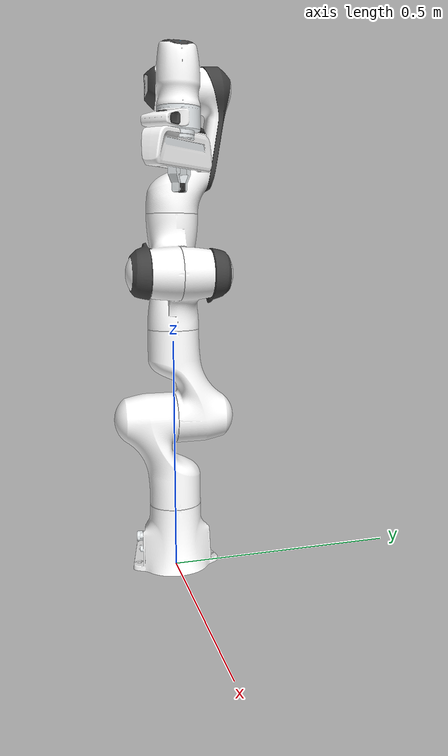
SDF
<sdf version='1.9'>
  <model name='panda'>
    <joint name='panda_joint_base' type='fixed'>
      <pose relative_to='__model__'>0 0 0 0 0 0</pose>
      <parent>world</parent>
      <child>panda_link0</child>
    </joint>
    <link name='panda_link0'>
      <pose relative_to='panda_joint_base'>0 0 0 0 0 0</pose>
      <inertial>
        <pose>-0.025566 -2.87883e-05 0.057332 0 0 0</pose>
        <mass>2.8142713001040618</mass>
        <inertia>
          <ixx>0.0075390636364814686</ixx>
          <ixy>-1.505312457478333e-05</ixy>
          <ixz>-0.0012144328835738971</ixz>
          <iyy>0.01050801742738296</iyy>
          <iyz>1.043480350103298e-05</iyz>
          <izz>0.0098649336387082748</izz>
        </inertia>
      </inertial>
      <collision name='panda_link0_collision'>
        <pose>0 0 0 0 0 0</pose>
        <geometry>
          <mesh>
            <scale>1 1 1</scale>
            <uri>meshes/collision/link0.stl</uri>
          </mesh>
        </geometry>
        <surface>
          <contact>
            <ode/>
          </contact>
          <friction>
            <ode>
              <mu>0.84999999999999998</mu>
              <mu2>0.84999999999999998</mu2>
            </ode>
          </friction>
        </surface>
      </collision>
      <visual name='panda_link0_visual'>
        <pose>0 0 0 0 0 0</pose>
        <geometry>
          <mesh>
            <scale>1 1 1</scale>
            <uri>meshes/visual/link0.dae</uri>
          </mesh>
        </geometry>
      </visual>
    </link>
    <joint name='panda_joint1' type='revolute'>
      <pose relative_to='panda_link0'>0 0 0.333 0 0 0</pose>
      <parent>panda_link0</parent>
      <child>panda_link1</child>
      <axis>
        <xyz>0 0 1</xyz>
        <limit>
          <lower>-2.8972465583105871</lower>
          <upper>2.8972465583105871</upper>
          <effort>87</effort>
          <velocity>2.617993877991494</velocity>
        </limit>
        <dynamics>
          <damping>21.75</damping>
          <friction>3.48</friction>
          <spring_reference>0</spring_reference>
          <spring_stiffness>0</spring_stiffness>
        </dynamics>
      </axis>
      <physics>
        <ode>
          <limit>
            <cfm>0</cfm>
            <erp>0.20000000000000001</erp>
          </limit>
        </ode>
      </physics>
    </joint>
    <link name='panda_link1'>
      <pose relative_to='panda_joint1'>0 0 0 0 0 0</pose>
      <inertial>
        <pose>-3.72212e-09 -0.0324958 -0.0675818 0 0 0</pose>
        <mass>2.6433170427227211</mass>
        <inertia>
          <ixx>0.017405076982879721</ixx>
          <ixy>-8.6879863696210777e-09</ixy>
          <ixz>-1.627781906292042e-08</ixz>
          <iyy>0.01535207793578173</iyy>
          <iyz>0.0045108559591022449</iyz>
          <izz>0.0059878916630738566</izz>
        </inertia>
      </inertial>
      <collision name='panda_link1_collision'>
        <pose>0 0 0 0 0 0</pose>
        <geometry>
          <mesh>
            <scale>1 1 1</scale>
            <uri>meshes/collision/link1.stl</uri>
          </mesh>
        </geometry>
        <surface>
          <contact>
            <ode/>
          </contact>
          <friction>
            <ode>
              <mu>0.84999999999999998</mu>
              <mu2>0.84999999999999998</mu2>
            </ode>
          </friction>
        </surface>
      </collision>
      <visual name='panda_link1_visual'>
        <pose>0 0 0 0 0 0</pose>
        <geometry>
          <mesh>
            <scale>1 1 1</scale>
            <uri>meshes/visual/link1.dae</uri>
          </mesh>
        </geometry>
      </visual>
    </link>
    <joint name='panda_joint2' type='revolute'>
      <pose relative_to='panda_link1'>0 0 0 -1.570796326794896 0 0</pose>
      <parent>panda_link1</parent>
      <child>panda_link2</child>
      <axis>
        <xyz>0 0 1</xyz>
        <limit>
          <lower>-1.7627825445142731</lower>
          <upper>1.7627825445142731</upper>
          <effort>87</effort>
          <velocity>2.617993877991494</velocity>
        </limit>
        <dynamics>
          <damping>21.75</damping>
          <friction>3.48</friction>
          <spring_reference>0</spring_reference>
          <spring_stiffness>0</spring_stiffness>
        </dynamics>
      </axis>
      <physics>
        <ode>
          <limit>
            <cfm>0</cfm>
            <erp>0.20000000000000001</erp>
          </limit>
        </ode>
      </physics>
    </joint>
    <link name='panda_link2'>
      <pose relative_to='panda_joint2'>0 0 0 0 0 0</pose>
      <inertial>
        <pose>3.17833e-07 -0.06861 0.0322285 0 0 0</pose>
        <mass>2.6652755331661191</mass>
        <inertia>
          <ixx>0.017786940056353829</ixx>
          <ixy>8.7063562587911901e-08</ixy>
          <ixz>3.7520720583940079e-08</ixz>
          <iyy>0.0060441338679528443</iyy>
          <iyz>-0.0045994902954903756</iyz>
          <izz>0.015710955004556951</izz>
        </inertia>
      </inertial>
      <collision name='panda_link2_collision'>
        <pose>0 0 0 0 0 0</pose>
        <geometry>
          <mesh>
            <scale>1 1 1</scale>
            <uri>meshes/collision/link2.stl</uri>
          </mesh>
        </geometry>
        <surface>
          <contact>
            <ode/>
          </contact>
          <friction>
            <ode>
              <mu>0.84999999999999998</mu>
              <mu2>0.84999999999999998</mu2>
            </ode>
          </friction>
        </surface>
      </collision>
      <visual name='panda_link2_visual'>
        <pose>0 0 0 0 0 0</pose>
        <geometry>
          <mesh>
            <scale>1 1 1</scale>
            <uri>meshes/visual/link2.dae</uri>
          </mesh>
        </geometry>
      </visual>
    </link>
    <joint name='panda_joint3' type='revolute'>
      <pose relative_to='panda_link2'>0 -0.316 0 1.570796326794896 0 0</pose>
      <parent>panda_link2</parent>
      <child>panda_link3</child>
      <axis>
        <xyz>0 0 1</xyz>
        <limit>
          <lower>-2.8972465583105871</lower>
          <upper>2.8972465583105871</upper>
          <effort>87</effort>
          <velocity>2.617993877991494</velocity>
        </limit>
        <dynamics>
          <damping>21.75</damping>
          <friction>3.48</friction>
          <spring_reference>0</spring_reference>
          <spring_stiffness>0</spring_stiffness>
        </dynamics>
      </axis>
      <physics>
        <ode>
          <limit>
            <cfm>0</cfm>
            <erp>0.20000000000000001</erp>
          </limit>
        </ode>
      </physics>
    </joint>
    <link name='panda_link3'>
      <pose relative_to='panda_joint3'>0 0 0 0 0 0</pose>
      <inertial>
        <pose>0.0469893 0.0316374 -0.031704 0 0 0</pose>
        <mass>2.3293714829045729</mass>
        <inertia>
          <ixx>0.0075496764161139774</ixx>
          <ixy>-0.002432046451349223</ixy>
          <ixz>-0.003250815048103007</ixz>
          <iyy>0.0096806760801913978</iyy>
          <iyz>-0.0021316282421730689</iyz>
          <izz>0.0079445574220080861</izz>
        </inertia>
      </inertial>
      <collision name='panda_link3_collision'>
        <pose>0 0 0 0 0 0</pose>
        <geometry>
          <mesh>
            <scale>1 1 1</scale>
            <uri>meshes/collision/link3.stl</uri>
          </mesh>
        </geometry>
        <surface>
          <contact>
            <ode/>
          </contact>
          <friction>
            <ode>
              <mu>0.84999999999999998</mu>
              <mu2>0.84999999999999998</mu2>
            </ode>
          </friction>
        </surface>
      </collision>
      <visual name='panda_link3_visual'>
        <pose>0 0 0 0 0 0</pose>
        <geometry>
          <mesh>
            <scale>1 1 1</scale>
            <uri>meshes/visual/link3.dae</uri>
          </mesh>
        </geometry>
      </visual>
    </link>
    <joint name='panda_joint4' type='revolute'>
      <pose relative_to='panda_link3'>0.0825 0 0 1.570796326794896 0 0</pose>
      <parent>panda_link3</parent>
      <child>panda_link4</child>
      <axis>
        <xyz>0 0 1</xyz>
        <limit>
          <lower>-3.0717794835100198</lower>
          <upper>-0.069813170079773182</upper>
          <effort>87</effort>
          <velocity>2.617993877991494</velocity>
        </limit>
        <dynamics>
          <damping>21.75</damping>
          <friction>3.48</friction>
          <spring_reference>0</spring_reference>
          <spring_stiffness>0</spring_stiffness>
        </dynamics>
      </axis>
      <physics>
        <ode>
          <limit>
            <cfm>0</cfm>
            <erp>0.20000000000000001</erp>
          </limit>
        </ode>
      </physics>
    </joint>
    <link name='panda_link4'>
      <pose relative_to='panda_joint4'>0 0 0 0 0 0</pose>
      <inertial>
        <pose>-0.0360505 0.0337069 0.0319019 0 0 0</pose>
        <mass>2.3104763646281512</mass>
        <inertia>
          <ixx>0.0077645688148648279</ixx>
          <ixy>0.0033714752040459352</ixy>
          <ixz>-0.0023436211131682479</ixz>
          <iyy>0.0080157769299801489</iyy>
          <iyz>0.002291752616147062</iyz>
          <izz>0.0099558823080710662</izz>
        </inertia>
      </inertial>
      <collision name='panda_link4_collision'>
        <pose>0 0 0 0 0 0</pose>
        <geometry>
          <mesh>
            <scale>1 1 1</scale>
            <uri>meshes/collision/link4.stl</uri>
          </mesh>
        </geometry>
        <surface>
          <contact>
            <ode/>
          </contact>
          <friction>
            <ode>
              <mu>0.84999999999999998</mu>
              <mu2>0.84999999999999998</mu2>
            </ode>
          </friction>
        </surface>
      </collision>
      <visual name='panda_link4_visual'>
        <pose>0 0 0 0 0 0</pose>
        <geometry>
          <mesh>
            <scale>1 1 1</scale>
            <uri>meshes/visual/link4.dae</uri>
          </mesh>
        </geometry>
      </visual>
    </link>
    <joint name='panda_joint5' type='revolute'>
      <pose relative_to='panda_link4'>-0.0825 0.384 0 -1.570796326794896 0 0</pose>
      <parent>panda_link4</parent>
      <child>panda_link5</child>
      <axis>
        <xyz>0 0 1</xyz>
        <limit>
          <lower>-2.8972465583105871</lower>
          <upper>2.8972465583105871</upper>
          <effort>12</effort>
          <velocity>3.1415926535897931</velocity>
        </limit>
        <dynamics>
          <damping>3</damping>
          <friction>0.47999999999999998</friction>
          <spring_reference>0</spring_reference>
          <spring_stiffness>0</spring_stiffness>
        </dynamics>
      </axis>
      <physics>
        <ode>
          <limit>
            <cfm>0</cfm>
            <erp>0.20000000000000001</erp>
          </limit>
        </ode>
      </physics>
    </joint>
    <link name='panda_link5'>
      <pose relative_to='panda_joint5'>0 0 0 0 0 0</pose>
      <inertial>
        <pose>-6.12525e-06 0.0610427 -0.104176 0 0 0</pose>
        <mass>2.6226426154892</mass>
        <inertia>
          <ixx>0.029070538014399381</ixx>
          <ixy>6.2087382687255679e-07</ixy>
          <ixz>-1.005915192502339e-05</ixz>
          <iyy>0.027638529986528791</iyy>
          <iyz>-0.0074243064778508139</iyz>
          <izz>0.0042511112344007368</izz>
        </inertia>
      </inertial>
      <collision name='panda_link5_collision'>
        <pose>0 0 0 0 0 0</pose>
        <geometry>
          <mesh>
            <scale>1 1 1</scale>
            <uri>meshes/collision/link5.stl</uri>
          </mesh>
        </geometry>
        <surface>
          <contact>
            <ode/>
          </contact>
          <friction>
            <ode>
              <mu>0.84999999999999998</mu>
              <mu2>0.84999999999999998</mu2>
            </ode>
          </friction>
        </surface>
      </collision>
      <visual name='panda_link5_visual'>
        <pose>0 0 0 0 0 0</pose>
        <geometry>
          <mesh>
            <scale>1 1 1</scale>
            <uri>meshes/visual/link5.dae</uri>
          </mesh>
        </geometry>
      </visual>
    </link>
    <joint name='panda_joint6' type='revolute'>
      <pose relative_to='panda_link5'>0 0 0 1.570796326794896 0 0</pose>
      <parent>panda_link5</parent>
      <child>panda_link6</child>
      <axis>
        <xyz>0 0 1</xyz>
        <limit>
          <lower>-0.017453292519943299</lower>
          <upper>3.7524578917878082</upper>
          <effort>12</effort>
          <velocity>3.1415926535897931</velocity>
        </limit>
        <dynamics>
          <damping>3</damping>
          <friction>0.47999999999999998</friction>
          <spring_reference>0</spring_reference>
          <spring_stiffness>0</spring_stiffness>
        </dynamics>
      </axis>
      <physics>
        <ode>
          <limit>
            <cfm>0</cfm>
            <erp>0.20000000000000001</erp>
          </limit>
        </ode>
      </physics>
    </joint>
    <link name='panda_link6'>
      <pose relative_to='panda_joint6'>0 0 0 0 0 0</pose>
      <inertial>
        <pose>0.051051 0.00910797 0.0106343 0 0 0</pose>
        <mass>1.502580488662679</mass>
        <inertia>
          <ixx>0.002940555801469018</ixx>
          <ixy>-0.00042391108351381513</ixy>
          <ixz>0.00061000773533871698</ixz>
          <iyy>0.0039210520124867698</iyy>
          <iyz>0.00012647545430836209</iyz>
          <izz>0.0054115603870960186</izz>
        </inertia>
      </inertial>
      <collision name='panda_link6_collision'>
        <pose>0 0 0 0 0 0</pose>
        <geometry>
          <mesh>
            <scale>1 1 1</scale>
            <uri>meshes/collision/link6.stl</uri>
          </mesh>
        </geometry>
        <surface>
          <contact>
            <ode/>
          </contact>
          <friction>
            <ode>
              <mu>0.84999999999999998</mu>
              <mu2>0.84999999999999998</mu2>
            </ode>
          </friction>
        </surface>
      </collision>
      <visual name='panda_link6_visual'>
        <pose>0 0 0 0 0 0</pose>
        <geometry>
          <mesh>
            <scale>1 1 1</scale>
            <uri>meshes/visual/link6.dae</uri>
          </mesh>
        </geometry>
      </visual>
    </link>
    <joint name='panda_joint7' type='revolute'>
      <pose relative_to='panda_link6'>0.08799999999999999 0 0 1.570796326794896 0 0</pose>
      <parent>panda_link6</parent>
      <child>panda_link7</child>
      <axis>
        <xyz>0 0 1</xyz>
        <limit>
          <lower>-2.8972465583105871</lower>
          <upper>2.8972465583105871</upper>
          <effort>12</effort>
          <velocity>3.1415926535897931</velocity>
        </limit>
        <dynamics>
          <damping>3</damping>
          <friction>0.47999999999999998</friction>
          <spring_reference>0</spring_reference>
          <spring_stiffness>0</spring_stiffness>
        </dynamics>
      </axis>
      <physics>
        <ode>
          <limit>
            <cfm>0</cfm>
            <erp>0.20000000000000001</erp>
          </limit>
        </ode>
      </physics>
    </joint>
    <link name='panda_link7'>
      <pose relative_to='panda_joint7'>0 0 0 0 0 0</pose>
      <inertial>
        <pose>0.008875033507903096 0.008740671088339662 0.07976070333019224 0 0 0</pose>
        <mass>0.66437446475861062</mass>
        <inertia>
          <ixx>0.001715624246641117</ixx>
          <ixy>-0.00035911383816520319</ixy>
          <ixz>0.0001149799088050231</ixz>
          <iyy>0.0017151484993571059</iyy>
          <iyz>-1.563921204261271e-05</iyz>
          <izz>0.001211247721448517</izz>
        </inertia>
      </inertial>
      <collision name='panda_link7_collision'>
        <pose>0 0 0 0 0 0</pose>
        <geometry>
          <mesh>
            <scale>1 1 1</scale>
            <uri>meshes/collision/link7.stl</uri>
          </mesh>
        </geometry>
        <surface>
          <contact>
            <ode/>
          </contact>
          <friction>
            <ode>
              <mu>0.84999999999999998</mu>
              <mu2>0.84999999999999998</mu2>
            </ode>
          </friction>
        </surface>
      </collision>
      <collision name='panda_link7_fixed_joint_lump__panda_hand_collision_1'>
        <pose>0 0 0.107 0 0 -0.7853981633974484</pose>
        <geometry>
          <mesh>
            <scale>1 1 1</scale>
            <uri>meshes/collision/hand.stl</uri>
          </mesh>
        </geometry>
        <surface>
          <contact>
            <ode/>
          </contact>
          <friction>
            <ode>
              <mu>0.84999999999999998</mu>
              <mu2>0.84999999999999998</mu2>
            </ode>
          </friction>
        </surface>
      </collision>
      <visual name='panda_link7_visual'>
        <pose>0 0 0 0 0 0</pose>
        <geometry>
          <mesh>
            <scale>1 1 1</scale>
            <uri>meshes/visual/link7.dae</uri>
          </mesh>
        </geometry>
      </visual>
      <visual name='panda_link7_fixed_joint_lump__panda_hand_visual_1'>
        <pose>0 0 0.107 0 0 -0.7853981633974484</pose>
        <geometry>
          <mesh>
            <scale>1 1 1</scale>
            <uri>meshes/visual/hand.dae</uri>
          </mesh>
        </geometry>
      </visual>
    </link>
    <joint name='panda_finger_joint1' type='prismatic'>
      <pose relative_to='panda_link7'>0 0 0.1654 0 0 -0.7853981633974484</pose>
      <parent>panda_link7</parent>
      <child>panda_leftfinger</child>
      <axis>
        <xyz>0 1 0</xyz>
        <limit>
          <lower>0</lower>
          <upper>0.040000000000000001</upper>
          <effort>20</effort>
          <velocity>0.20000000000000001</velocity>
        </limit>
        <dynamics>
          <damping>3</damping>
          <friction>0.40000000000000002</friction>
          <spring_reference>0</spring_reference>
          <spring_stiffness>0</spring_stiffness>
        </dynamics>
      </axis>
      <physics>
        <ode>
          <limit>
            <cfm>0</cfm>
            <erp>0.20000000000000001</erp>
          </limit>
        </ode>
      </physics>
    </joint>
    <link name='panda_leftfinger'>
      <pose relative_to='panda_finger_joint1'>0 0 0 0 0 0</pose>
      <inertial>
        <pose>-6.2561e-06 0.00227781 -0.0277116 0 0 0</pose>
        <mass>0.2238453537819424</mass>
        <inertia>
          <ixx>6.7480416736369505e-05</ixx>
          <ixy>-4.1027443646025684e-09</ixy>
          <ixz>1.8693673970152991e-08</ixz>
          <iyy>6.6271892216413953e-05</iyy>
          <iyz>1.19675484743908e-05</iyz>
          <izz>1.550396267804825e-05</izz>
        </inertia>
      </inertial>
      <collision name='panda_leftfinger_collision'>
        <pose>0 0 0 0 0 0</pose>
        <geometry>
          <mesh>
            <scale>1 1 1</scale>
            <uri>meshes/collision/finger.stl</uri>
          </mesh>
        </geometry>
        <surface>
          <contact>
            <ode/>
          </contact>
          <friction>
            <ode>
              <mu>1.1299999999999999</mu>
              <mu2>1.1299999999999999</mu2>
            </ode>
          </friction>
        </surface>
      </collision>
      <visual name='panda_leftfinger_visual'>
        <pose>0 0 0 0 0 0</pose>
        <geometry>
          <mesh>
            <scale>1 1 1</scale>
            <uri>meshes/visual/finger.dae</uri>
          </mesh>
        </geometry>
      </visual>
    </link>
    <joint name='panda_finger_joint2' type='prismatic'>
      <pose relative_to='panda_link7'>0 0 0.1654 0 0 -0.7853981633974484</pose>
      <parent>panda_link7</parent>
      <child>panda_rightfinger</child>
      <axis>
        <xyz>0 -1 0</xyz>
        <limit>
          <lower>0</lower>
          <upper>0.040000000000000001</upper>
          <effort>20</effort>
          <velocity>0.20000000000000001</velocity>
        </limit>
        <dynamics>
          <damping>3</damping>
          <friction>0.40000000000000002</friction>
          <spring_reference>0</spring_reference>
          <spring_stiffness>0</spring_stiffness>
        </dynamics>
      </axis>
      <physics>
        <ode>
          <limit>
            <cfm>0</cfm>
            <erp>0.20000000000000001</erp>
          </limit>
        </ode>
      </physics>
    </joint>
    <link name='panda_rightfinger'>
      <pose relative_to='panda_finger_joint2'>0 0 0 0 0 0</pose>
      <inertial>
        <pose>-6.2561e-06 0.00227781 -0.0277116 0 0 3.141592653589793</pose>
        <mass>0.2238453537819424</mass>
        <inertia>
          <ixx>6.7480416736369505e-05</ixx>
          <ixy>-4.1027443646025684e-09</ixy>
          <ixz>1.8693673970152991e-08</ixz>
          <iyy>6.6271892216413953e-05</iyy>
          <iyz>1.19675484743908e-05</iyz>
          <izz>1.550396267804825e-05</izz>
        </inertia>
      </inertial>
      <collision name='panda_rightfinger_collision'>
        <pose>0 0 0 0 0 3.141592653589793</pose>
        <geometry>
          <mesh>
            <scale>1 1 1</scale>
            <uri>meshes/collision/finger.stl</uri>
          </mesh>
        </geometry>
        <surface>
          <contact>
            <ode/>
          </contact>
          <friction>
            <ode>
              <mu>1.1299999999999999</mu>
              <mu2>1.1299999999999999</mu2>
            </ode>
          </friction>
        </surface>
      </collision>
      <visual name='panda_rightfinger_visual'>
        <pose>0 0 0 0 0 3.141592653589793</pose>
        <geometry>
          <mesh>
            <scale>1 1 1</scale>
            <uri>meshes/visual/finger.dae</uri>
          </mesh>
        </geometry>
      </visual>
    </link>
    <static>false</static>
    <plugin name='ign_ros2_control::IgnitionROS2ControlPlugin' filename='ign_ros2_control-system'>
      <parameters>/home/andrej/ws/code/repos/panda_ign_moveit2/install/share/panda_moveit_config/config/controllers_effort.yaml</parameters>
    </plugin>
  </model>
</sdf>
